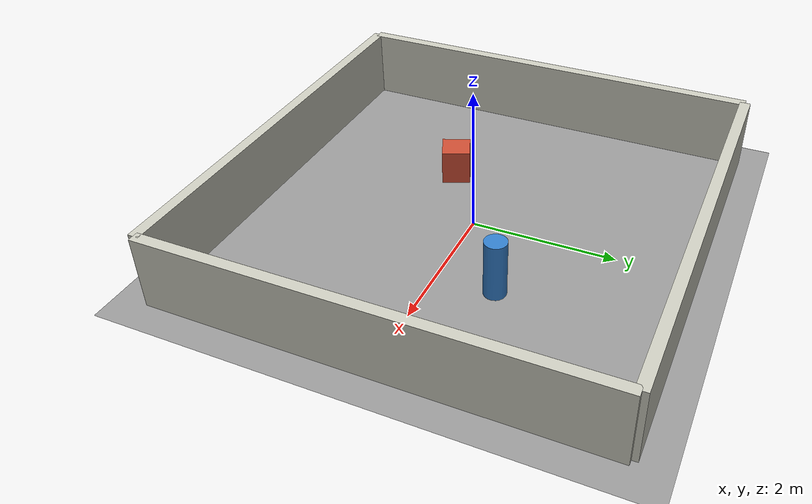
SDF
<?xml version="1.0" ?>
<sdf version="1.8">
  <world name="visiobot_room">

    <!-- Physics -->
    <physics name="default_physics" type="ode">
      <max_step_size>0.001</max_step_size>
      <real_time_factor>1.0</real_time_factor>
      <real_time_update_rate>1000</real_time_update_rate>
      <ode>
        <solver>
          <type>quick</type>
          <iters>50</iters>
        </solver>
      </ode>
    </physics>

    <gravity>0 0 -9.81</gravity>

    <!-- Scene ambient lighting -->
    <scene>
      <ambient>0.4 0.4 0.4 1</ambient>
      <background>0.7 0.7 0.7 1</background>
      <shadows>true</shadows>
    </scene>

    <!-- Sun (directional light) -->
    <light type="directional" name="sun">
      <cast_shadows>true</cast_shadows>
      <pose>0 0 10 0 0 0</pose>
      <diffuse>0.8 0.8 0.8 1</diffuse>
      <specular>0.2 0.2 0.2 1</specular>
      <direction>-0.5 0.1 -0.9</direction>
    </light>

    <!-- Required plugins -->
    <plugin filename="gz-sim-physics-system" name="gz::sim::systems::Physics"/>
    <plugin filename="gz-sim-scene-broadcaster-system" name="gz::sim::systems::SceneBroadcaster"/>
    <plugin filename="gz-sim-sensors-system" name="gz::sim::systems::Sensors"/>
    <plugin filename="gz-sim-user-commands-system" name="gz::sim::systems::UserCommands"/>

    <!-- Ground plane -->
    <model name="ground_plane">
      <static>true</static>
      <link name="link">
        <collision name="collision">
          <geometry>
            <plane>
              <normal>0 0 1</normal>
              <size>100 100</size>
            </plane>
          </geometry>
          <surface>
            <friction>
              <ode>
                <mu>1.0</mu>
                <mu2>1.0</mu2>
              </ode>
            </friction>
          </surface>
        </collision>
        <visual name="visual">
          <geometry>
            <plane>
              <normal>0 0 1</normal>
              <size>100 100</size>
            </plane>
          </geometry>
          <material>
            <ambient>0.6 0.6 0.6 1</ambient>
            <diffuse>0.6 0.6 0.6 1</diffuse>
          </material>
        </visual>
      </link>
    </model>

    <!-- Wall: North (+Y) -->
    <model name="wall_north">
      <static>true</static>
      <pose>0 3.0 0.5 0 0 0</pose>
      <link name="link">
        <collision name="collision">
          <geometry>
            <box><size>6.0 0.15 1.0</size></box>
          </geometry>
        </collision>
        <visual name="visual">
          <geometry>
            <box><size>6.0 0.15 1.0</size></box>
          </geometry>
          <material>
            <ambient>0.8 0.8 0.75 1</ambient>
            <diffuse>0.8 0.8 0.75 1</diffuse>
          </material>
        </visual>
      </link>
    </model>

    <!-- Wall: South (-Y) -->
    <model name="wall_south">
      <static>true</static>
      <pose>0 -3.0 0.5 0 0 0</pose>
      <link name="link">
        <collision name="collision">
          <geometry>
            <box><size>6.0 0.15 1.0</size></box>
          </geometry>
        </collision>
        <visual name="visual">
          <geometry>
            <box><size>6.0 0.15 1.0</size></box>
          </geometry>
          <material>
            <ambient>0.8 0.8 0.75 1</ambient>
            <diffuse>0.8 0.8 0.75 1</diffuse>
          </material>
        </visual>
      </link>
    </model>

    <!-- Wall: East (+X) -->
    <model name="wall_east">
      <static>true</static>
      <pose>3.0 0 0.5 0 0 1.5708</pose>
      <link name="link">
        <collision name="collision">
          <geometry>
            <box><size>6.0 0.15 1.0</size></box>
          </geometry>
        </collision>
        <visual name="visual">
          <geometry>
            <box><size>6.0 0.15 1.0</size></box>
          </geometry>
          <material>
            <ambient>0.8 0.8 0.75 1</ambient>
            <diffuse>0.8 0.8 0.75 1</diffuse>
          </material>
        </visual>
      </link>
    </model>

    <!-- Wall: West (-X) -->
    <model name="wall_west">
      <static>true</static>
      <pose>-3.0 0 0.5 0 0 1.5708</pose>
      <link name="link">
        <collision name="collision">
          <geometry>
            <box><size>6.0 0.15 1.0</size></box>
          </geometry>
        </collision>
        <visual name="visual">
          <geometry>
            <box><size>6.0 0.15 1.0</size></box>
          </geometry>
          <material>
            <ambient>0.8 0.8 0.75 1</ambient>
            <diffuse>0.8 0.8 0.75 1</diffuse>
          </material>
        </visual>
      </link>
    </model>

    <!-- Obstacle: Cylinder (LiDAR target) -->
    <model name="obstacle_cylinder">
      <static>true</static>
      <pose>1.2 0.8 0.4 0 0 0</pose>
      <link name="link">
        <collision name="collision">
          <geometry>
            <cylinder>
              <radius>0.15</radius>
              <length>0.8</length>
            </cylinder>
          </geometry>
        </collision>
        <visual name="visual">
          <geometry>
            <cylinder>
              <radius>0.15</radius>
              <length>0.8</length>
            </cylinder>
          </geometry>
          <material>
            <ambient>0.2 0.5 0.8 1</ambient>
            <diffuse>0.2 0.5 0.8 1</diffuse>
          </material>
        </visual>
      </link>
    </model>

    <!-- Obstacle: Box (LiDAR target) -->
    <model name="obstacle_box">
      <static>true</static>
      <pose>-1.0 -0.7 0.25 0 0 0.4</pose>
      <link name="link">
        <collision name="collision">
          <geometry>
            <box><size>0.4 0.4 0.5</size></box>
          </geometry>
        </collision>
        <visual name="visual">
          <geometry>
            <box><size>0.4 0.4 0.5</size></box>
          </geometry>
          <material>
            <ambient>0.8 0.3 0.2 1</ambient>
            <diffuse>0.8 0.3 0.2 1</diffuse>
          </material>
        </visual>
      </link>
    </model>

  </world>
</sdf>
